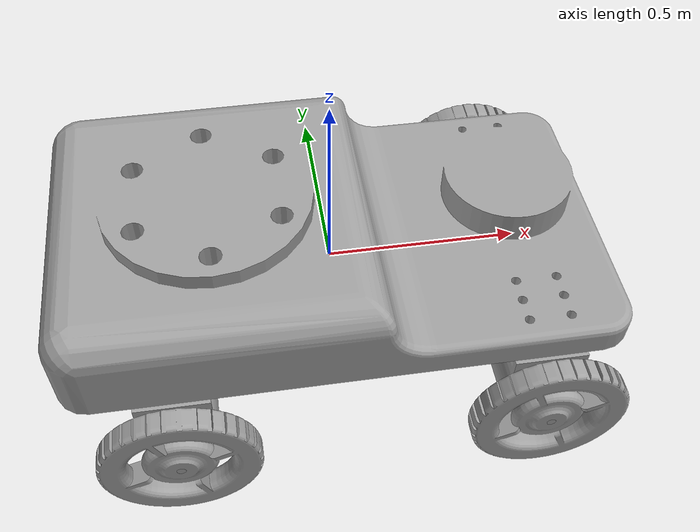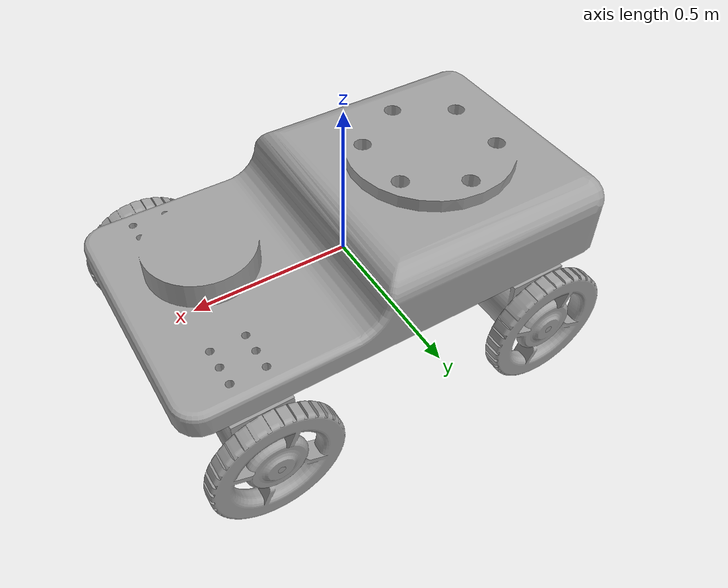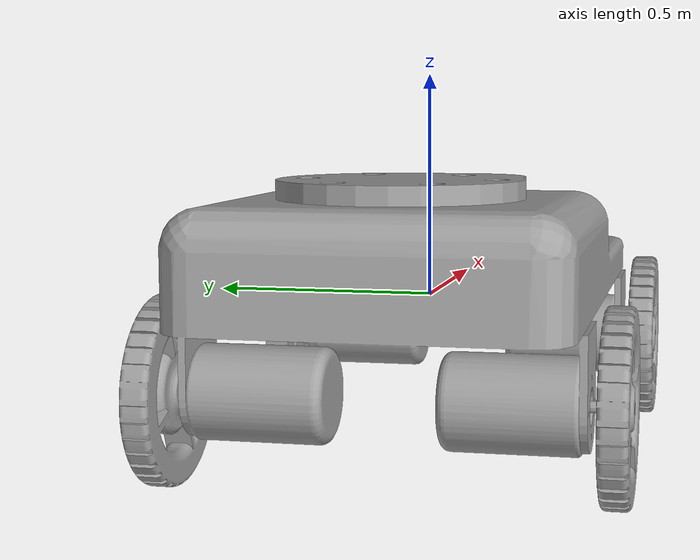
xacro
<?xml version="1.0"?>
<robot xmlns:xacro="http://www.ros.org/wiki/xacro" name="warehouse_robots">

  <!-- Global scale factor -->
  <xacro:property name="S" value="4.0"/>

  <!-- Default material -->
  <material name="default_color">
    <color rgba="0.62745 0.62745 0.62745 1"/>
  </material>

  <!-- ===========================
       base_footprint
  ============================ -->
  <link name="base_footprint"/>

  <joint name="base_joint" type="fixed">
    <parent link="base_footprint"/>
    <child link="base_link"/>
    <origin xyz="0 0 0" rpy="0 0 0"/>
  </joint>

  <!-- ===========================
       Base link
  ============================ -->
  <link name="base_link">
    <inertial>
      <origin xyz="0 0 0" rpy="0 0 0"/>
      <!-- origin mass and inertia -->

      <!-- mass and inertia after scaling up -->
      <mass value="24.1728"/>
      <inertia ixx="1.1292672" ixy="1.923E-07" ixz="0.17664"
               iyy="2.5005056" iyz="-1.500E-06" izz="3.391488"/>
    </inertial>

    <visual>
      <origin xyz="0 0 0" rpy="0 0 0"/>
      <geometry>
        <mesh filename="package://warehouse_robot_description/meshes/base_link.STL"
              scale="${S} ${S} ${S}"/>
      </geometry>
      <material name="default_color"/>
    </visual>

    <collision>
      <origin xyz="0 0 0" rpy="0 0 0"/>
      <geometry>
        <mesh filename="package://warehouse_robot_description/meshes/base_link.STL"
              scale="${S} ${S} ${S}"/>
      </geometry>
    </collision>
  </link>

  <!-- ===========================
       Wheels Macro
  ============================ -->
  <xacro:macro name="wheel_link" params="wheel_name mesh x y z axis">
    <link name="${wheel_name}">

      <inertial>
        <origin xyz="${0*S} ${0*S} ${z*S}" rpy="0 0 0"/>
        <!-- origin mass and inertia -->
        <mass value="0.5272512"/>
        <inertia ixx="6.040576E-03" ixy="0" ixz="0"
                 iyy="6.040576E-03" iyz="0" izz="0.01180672"/>
      </inertial>

      <visual>
        <origin xyz="0 0 0" rpy="0 0 0"/>
        <geometry>
          <mesh filename="package://warehouse_robot_description/meshes/${mesh}"
                scale="${S} ${S} ${S}"/>
        </geometry>
        <material name="default_color"/>
      </visual>

      <collision>
        <origin xyz="0 0 0" rpy="0 0 0"/>
        <geometry>
          <mesh filename="package://warehouse_robot_description/meshes/${mesh}"
                scale="${S} ${S} ${S}"/>
        </geometry>
      </collision>

    </link>

    <joint name="${wheel_name}_joint" type="continuous">
      <origin xyz="${x*S} ${y*S} ${-0.039*S}" rpy="1.5708 0 0"/>
      <parent link="base_link"/>
      <child link="${wheel_name}"/>
      <axis xyz="${axis}"/>
      <limit effort="10" velocity="10"/>
      <dynamics damping="0.1" friction="0.1"/>
    </joint>

    <!--friction to the wheels-->
    <gazebo reference="${wheel_name}">
      <mu1>2.0</mu1>
      <mu2>0.8</mu2>
      <kp>10000000.0</kp>
      <kd>1.0</kd>
      <material>Gazebo/DarkGrey</material>
    </gazebo>
  </xacro:macro>

  <!-- Instantiate wheels -->
  <xacro:wheel_link wheel_name="RB_wheel" mesh="RB_wheel.STL" x="-0.10793" y="-0.1235" z="-0.0075004" axis="0 0 -1"/>
  <xacro:wheel_link wheel_name="RF_wheel" mesh="RF_wheel.STL" x="0.12207"  y="-0.1235" z="-0.0075004" axis="0 0 -1"/>
  <xacro:wheel_link wheel_name="LB_wheel" mesh="LB_wheel.STL" x="-0.10793" y="0.1235"  z="0.0074996"  axis="0 0 1"/>
  <xacro:wheel_link wheel_name="LF_wheel" mesh="LF_wheel.STL" x="0.12207"  y="0.1235"  z="0.0074996"  axis="0 0 1"/>

  <!-- ===========================
       Sensor (LiDAR)
  ============================ -->
  <link name="lidar_link">
    <inertial>
      <origin xyz="0 0 0" rpy="0 0 0"/>
      <mass value="0.01"/> <inertia ixx="0.0001" ixy="0" ixz="0" iyy="0.0001" iyz="0" izz="0.0001"/>
    </inertial>

    </link>

  <joint name="lidar_joint" type="fixed">
    <parent link="base_link"/>
    <child link="lidar_link"/>

    <origin xyz="${0.12207*S} ${0*S} ${0.05*S}" rpy="0 0 0"/>
  </joint>

  <gazebo reference="lidar_link">
    <sensor name="lidar" type="gpu_lidar">
      <always_on>true</always_on>
      <visualize>true</visualize>
      <topic>scan</topic>
      <update_rate>10</update_rate>

      <gz_frame_id>lidar_link</gz_frame_id>
      <frame_id>lidar_link</frame_id>

      <ray>
        <scan>
          <horizontal>
            <samples>360</samples>
            <resolution>1</resolution>
            <min_angle>-3.14</min_angle>
            <max_angle>3.14</max_angle>
          </horizontal>
        </scan>
        <range>
          <min>0.3</min>
          <max>12.0</max>
        </range>
      </ray>
      <plugin filename="libignition-gazebo-sensors-system.so"
              name="ignition::gazebo::systems::Sensors">
        <render_engine>ogre2</render_engine>
      </plugin>
    </sensor>
  </gazebo>

  <!-- ===========================
       Diff Drive
  ============================ -->
  <gazebo>
    <plugin
      filename="libignition-gazebo-diff-drive-system.so"
      name="ignition::gazebo::systems::DiffDrive">

      <left_joint>LF_wheel_joint</left_joint>
      <left_joint>LB_wheel_joint</left_joint>
      <right_joint>RF_wheel_joint</right_joint>
      <right_joint>RB_wheel_joint</right_joint>

      <wheel_separation>0.988</wheel_separation>
      <wheel_radius>0.2</wheel_radius>

      <max_linear_acceleration>20.0</max_linear_acceleration>
      <min_linear_acceleration>-20.0</min_linear_acceleration>
      <max_angular_acceleration>20.0</max_angular_acceleration>
      <min_angular_acceleration>-20.0</min_angular_acceleration>

      <topic>/cmd_vel</topic>
      <odom_topic>/odom</odom_topic>
      <tf_topic>/tf</tf_topic>
      <frame_id>odom</frame_id>
      <child_frame_id>base_footprint</child_frame_id>
      <odom_publish_frequency>30</odom_publish_frequency>

    </plugin>
  </gazebo>

</robot>
